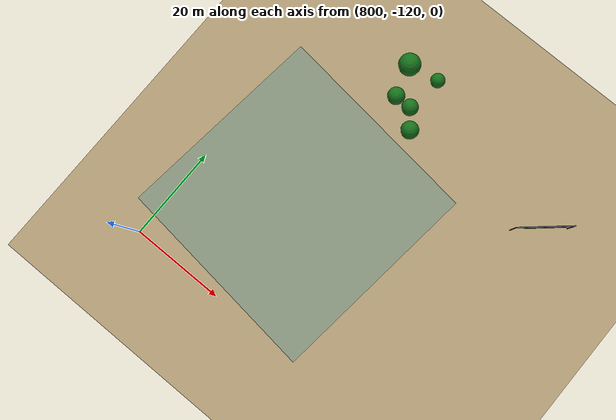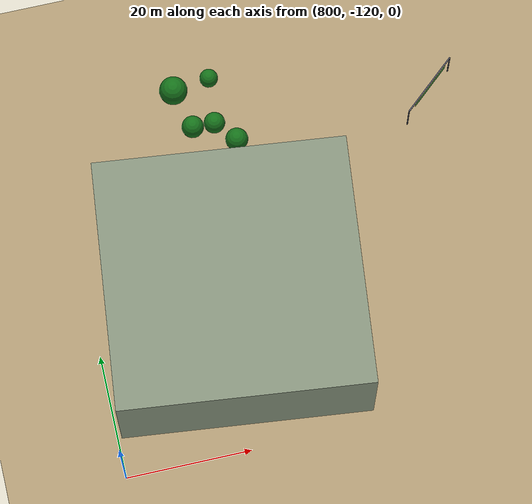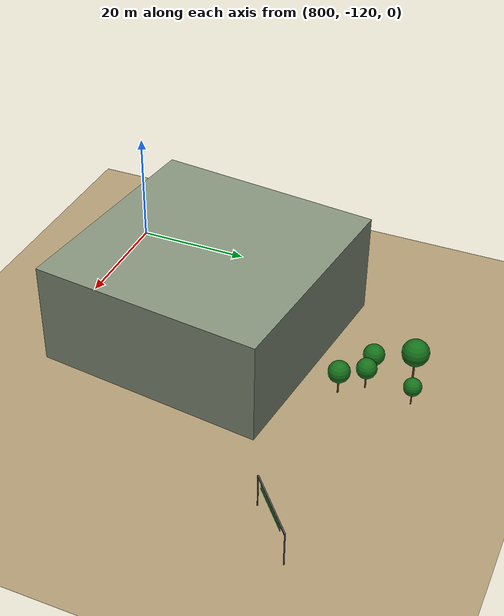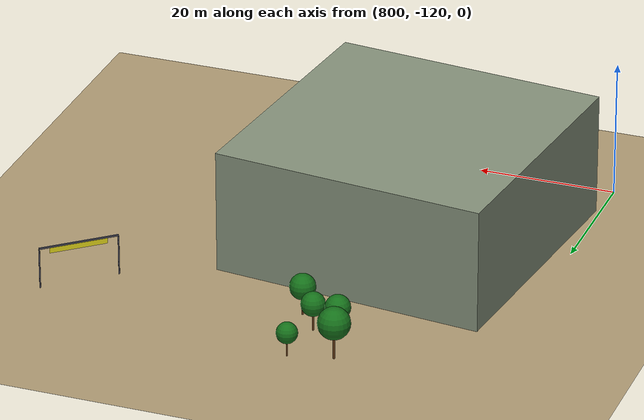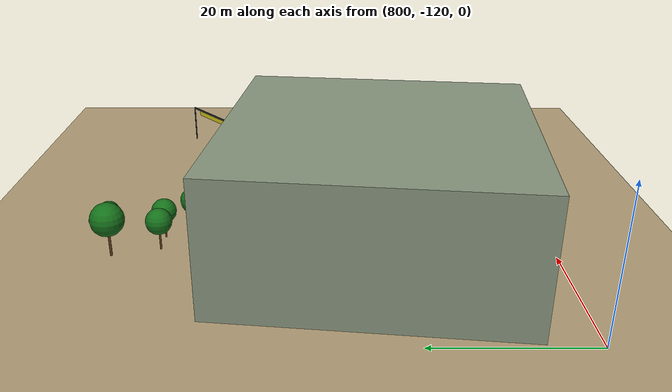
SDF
<sdf version="1.9">
 <world name="crossroad_world">
  <model name="ground_plane">
   <static>true</static>
   <pose>0 0 -0.05 0 0 0</pose>
   <link name="link">
    <collision name="collision">
     <geometry><plane><normal>0 0 1</normal><size>10000 10000</size></plane></geometry>
    </collision>
    <visual name="visual">
     <geometry><plane><normal>0 0 1</normal><size>15000 15000</size></plane></geometry>
     <material><ambient>0.68 0.60 0.45 1</ambient><diffuse>0.68 0.60 0.45 1</diffuse></material>
    </visual>
   </link>
  </model>
  <model name="gantry_120">
   <static>true</static>
   <pose>860.886 -69.143 0 0 0 0.717</pose>
   <link name="link">
    <visual name="post_l">
     <pose>-5.700 0 2.925 0 0 0</pose>
     <geometry><cylinder><radius>0.1</radius><length>5.85</length></cylinder></geometry>
     <material><ambient>0.30 0.30 0.35 1</ambient><diffuse>0.30 0.30 0.35 1</diffuse></material>
    </visual>
    <visual name="post_r">
     <pose>5.700 0 2.925 0 0 0</pose>
     <geometry><cylinder><radius>0.1</radius><length>5.85</length></cylinder></geometry>
     <material><ambient>0.30 0.30 0.35 1</ambient><diffuse>0.30 0.30 0.35 1</diffuse></material>
    </visual>
    <visual name="beam">
     <pose>0 0 6.000 0 0 0</pose>
     <geometry><box><size>11.400 0.22 0.22</size></box></geometry>
     <material><ambient>0.30 0.30 0.35 1</ambient><diffuse>0.30 0.30 0.35 1</diffuse></material>
    </visual>
    <visual name="sign_border">
     <pose>0 -0.14 5.450 0 0 0</pose>
     <geometry><box><size>8.288 0.04 0.92</size></box></geometry>
     <material><ambient>0.90 0.85 0.10 1</ambient><diffuse>0.90 0.85 0.10 1</diffuse></material>
    </visual>
    <visual name="sign_panel">
     <pose>0 -0.15 5.450 0 0 0</pose>
     <geometry><box><size>8.208 0.05 0.86</size></box></geometry>
     <material><ambient>0.05 0.38 0.10 1</ambient><diffuse>0.05 0.38 0.10 1</diffuse></material>
    </visual>
    <collision name="col_post_l">
     <pose>-5.700 0 2.925 0 0 0</pose>
     <geometry><cylinder><radius>0.1</radius><length>5.85</length></cylinder></geometry>
    </collision>
    <collision name="col_post_r">
     <pose>5.700 0 2.925 0 0 0</pose>
     <geometry><cylinder><radius>0.1</radius><length>5.85</length></cylinder></geometry>
    </collision>
    <collision name="col_beam">
     <pose>0 0 6.000 0 0 0</pose>
     <geometry><box><size>11.400 0.22 0.22</size></box></geometry>
    </collision>
   </link>
  </model>
  <model name="tree_29">
   <static>true</static>
   <pose>822.352 -67.038 0 0 0 0</pose>
   <link name="link">
    <visual name="trunk">
     <pose>0 0 1.508 0 0 0</pose>
     <geometry><cylinder><radius>0.132</radius><length>3.015</length></cylinder></geometry>
     <material><ambient>0.38 0.22 0.08 1</ambient><diffuse>0.38 0.22 0.08 1</diffuse></material>
    </visual>
    <visual name="canopy">
     <pose>0 0 4.179 0 0 0</pose>
     <geometry><sphere><radius>1.790</radius></sphere></geometry>
     <material><ambient>0.08 0.44 0.10 1</ambient><diffuse>0.08 0.44 0.10 1</diffuse></material>
    </visual>
    <collision name="col">
     <pose>0 0 1.508 0 0 0</pose>
     <geometry><cylinder><radius>0.132</radius><length>3.015</length></cylinder></geometry>
    </collision>
   </link>
  </model>
  <model name="tree_30">
   <static>true</static>
   <pose>820.567 -60.726 0 0 0 0</pose>
   <link name="link">
    <visual name="trunk">
     <pose>0 0 1.922 0 0 0</pose>
     <geometry><cylinder><radius>0.168</radius><length>3.844</length></cylinder></geometry>
     <material><ambient>0.38 0.22 0.08 1</ambient><diffuse>0.38 0.22 0.08 1</diffuse></material>
    </visual>
    <visual name="canopy">
     <pose>0 0 5.328 0 0 0</pose>
     <geometry><sphere><radius>2.282</radius></sphere></geometry>
     <material><ambient>0.08 0.44 0.10 1</ambient><diffuse>0.08 0.44 0.10 1</diffuse></material>
    </visual>
    <collision name="col">
     <pose>0 0 1.922 0 0 0</pose>
     <geometry><cylinder><radius>0.168</radius><length>3.844</length></cylinder></geometry>
    </collision>
   </link>
  </model>
  <model name="tree_34">
   <static>true</static>
   <pose>828.768 -70.709 0 0 0 0</pose>
   <link name="link">
    <visual name="trunk">
     <pose>0 0 1.551 0 0 0</pose>
     <geometry><cylinder><radius>0.136</radius><length>3.101</length></cylinder></geometry>
     <material><ambient>0.38 0.22 0.08 1</ambient><diffuse>0.38 0.22 0.08 1</diffuse></material>
    </visual>
    <visual name="canopy">
     <pose>0 0 4.298 0 0 0</pose>
     <geometry><sphere><radius>1.841</radius></sphere></geometry>
     <material><ambient>0.08 0.44 0.10 1</ambient><diffuse>0.08 0.44 0.10 1</diffuse></material>
    </visual>
    <collision name="col">
     <pose>0 0 1.551 0 0 0</pose>
     <geometry><cylinder><radius>0.136</radius><length>3.101</length></cylinder></geometry>
    </collision>
   </link>
  </model>
  <model name="tree_35">
   <static>true</static>
   <pose>825.903 -67.067 0 0 0 0</pose>
   <link name="link">
    <visual name="trunk">
     <pose>0 0 1.445 0 0 0</pose>
     <geometry><cylinder><radius>0.126</radius><length>2.890</length></cylinder></geometry>
     <material><ambient>0.38 0.22 0.08 1</ambient><diffuse>0.38 0.22 0.08 1</diffuse></material>
    </visual>
    <visual name="canopy">
     <pose>0 0 4.006 0 0 0</pose>
     <geometry><sphere><radius>1.716</radius></sphere></geometry>
     <material><ambient>0.08 0.44 0.10 1</ambient><diffuse>0.08 0.44 0.10 1</diffuse></material>
    </visual>
    <collision name="col">
     <pose>0 0 1.445 0 0 0</pose>
     <geometry><cylinder><radius>0.126</radius><length>2.890</length></cylinder></geometry>
    </collision>
   </link>
  </model>
  <model name="tree_36">
   <static>true</static>
   <pose>826.695 -59.208 0 0 0 0</pose>
   <link name="link">
    <visual name="trunk">
     <pose>0 0 1.261 0 0 0</pose>
     <geometry><cylinder><radius>0.110</radius><length>2.522</length></cylinder></geometry>
     <material><ambient>0.38 0.22 0.08 1</ambient><diffuse>0.38 0.22 0.08 1</diffuse></material>
    </visual>
    <visual name="canopy">
     <pose>0 0 3.496 0 0 0</pose>
     <geometry><sphere><radius>1.498</radius></sphere></geometry>
     <material><ambient>0.08 0.44 0.10 1</ambient><diffuse>0.08 0.44 0.10 1</diffuse></material>
    </visual>
    <collision name="col">
     <pose>0 0 1.261 0 0 0</pose>
     <geometry><cylinder><radius>0.110</radius><length>2.522</length></cylinder></geometry>
    </collision>
   </link>
  </model>
  <model name="building_708">
   <static>true</static>
   <pose>822.541 -96.136 8.964 0 0 -0.112</pose>
   <link name="link">
    <visual name="body">
     <geometry><box><size>39.65 39.56 17.93</size></box></geometry>
     <material><ambient>0.52 0.57 0.48 1</ambient><diffuse>0.52 0.57 0.48 1</diffuse></material>
    </visual>
    <collision name="col"><geometry><box><size>39.65 39.56 17.93</size></box></geometry></collision>
   </link>
  </model>
 </world>
</sdf>
